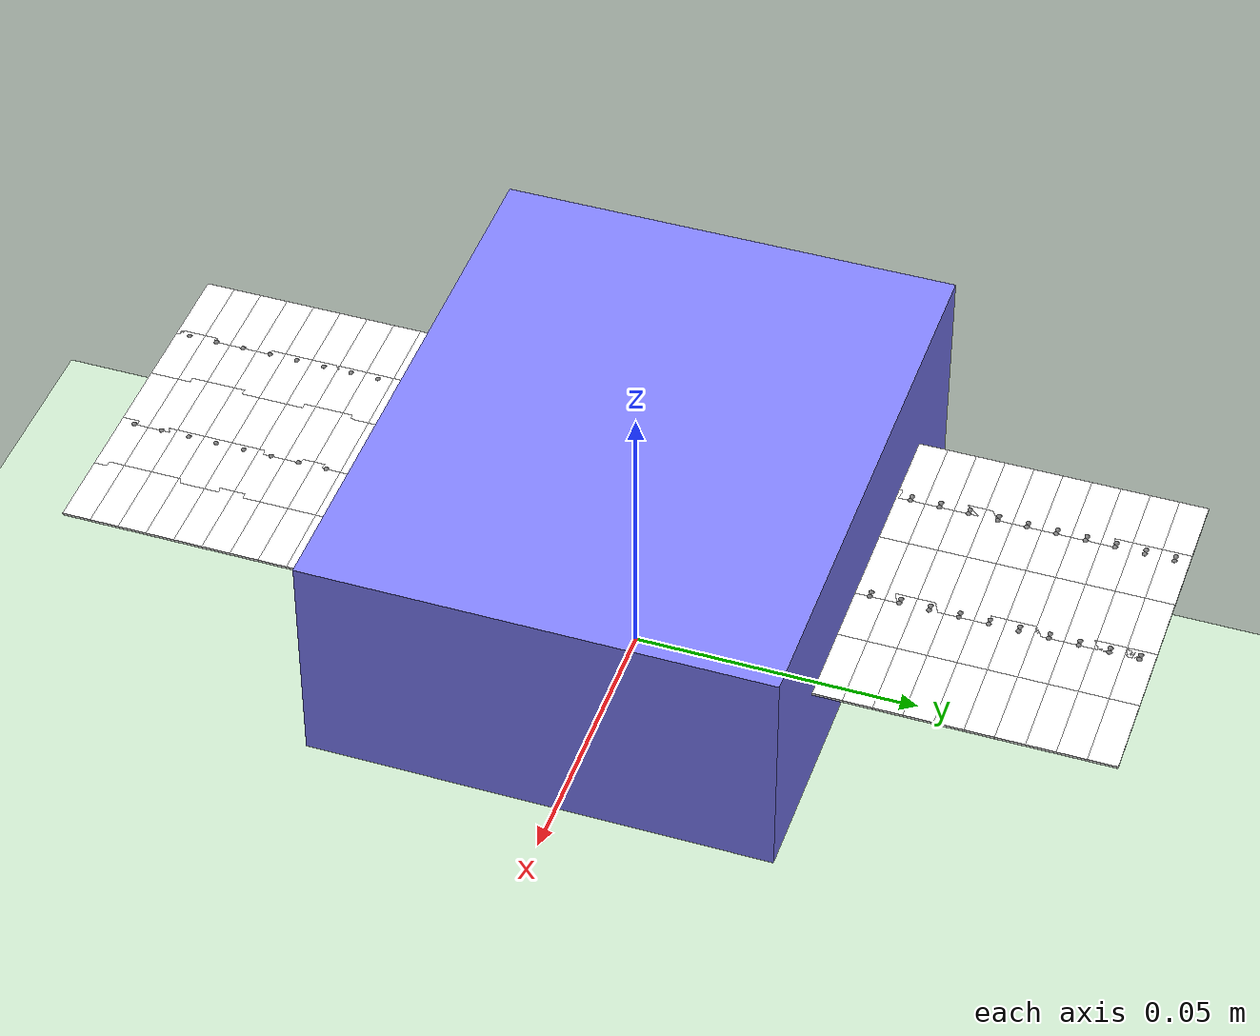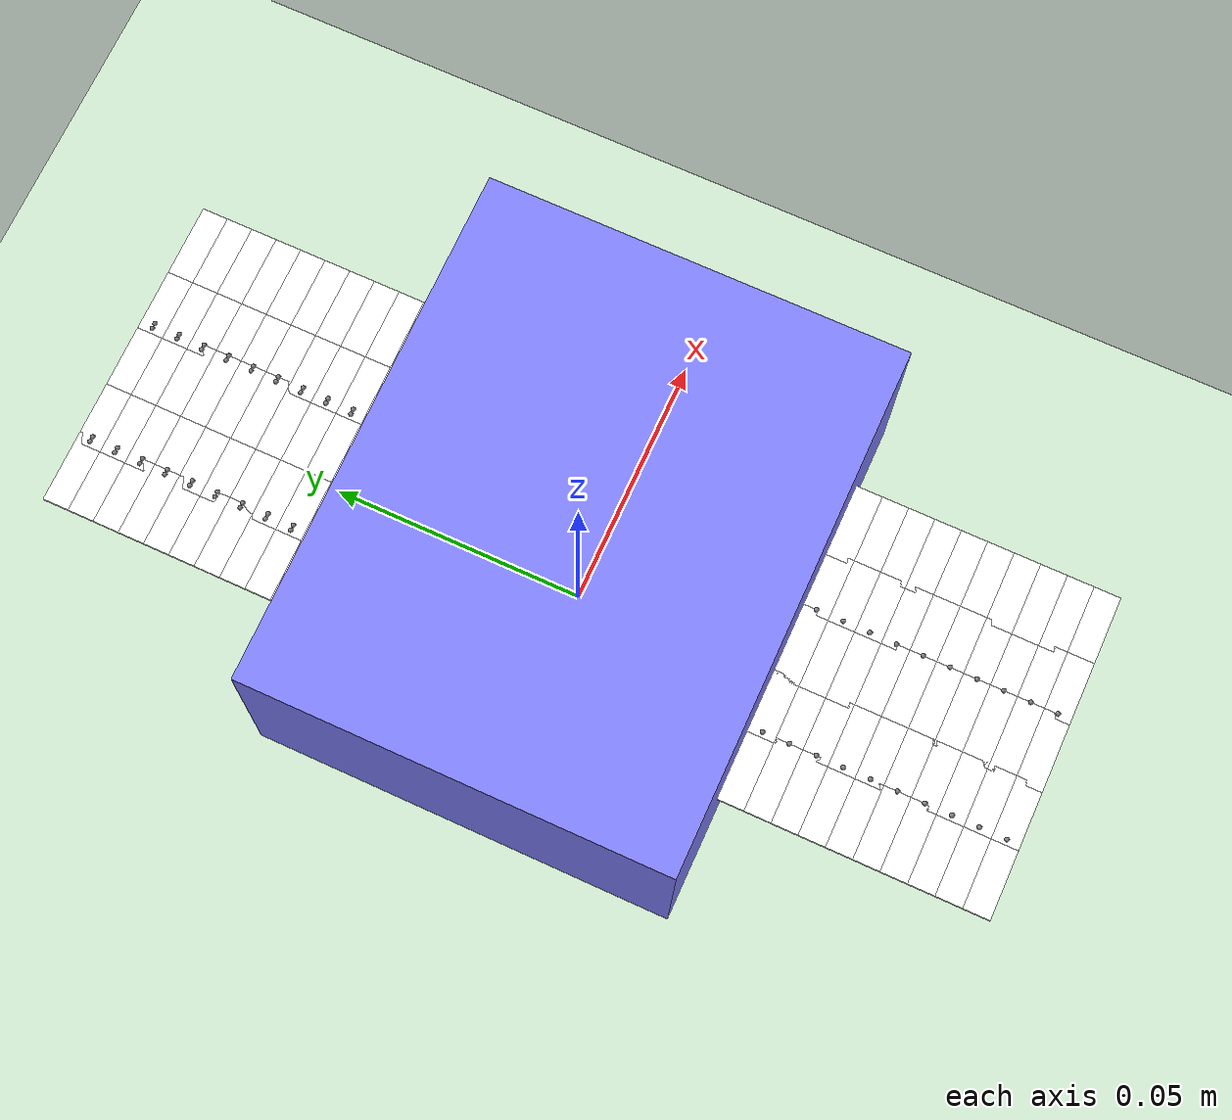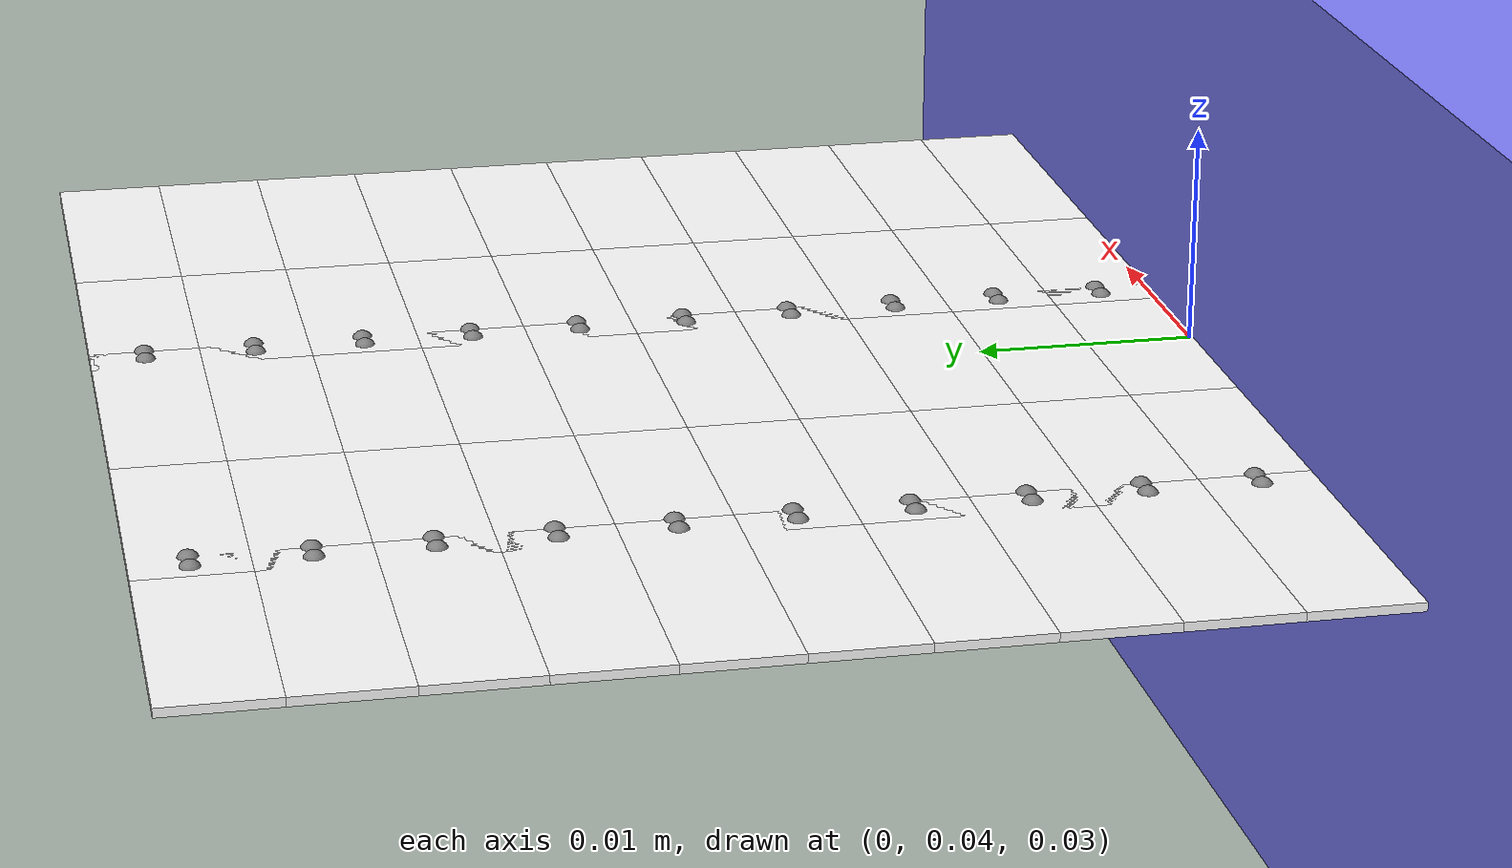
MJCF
<mujoco model="manta">
    <compiler angle="degree" coordinate="local" inertiafromgeom="true"/>
    <option collision="predefined" density="1000" integrator="RK4" timestep="0.01" viscosity="0.1"/>
    <default>
        <geom conaffinity="1" condim="1" contype="1" material="geom" rgba="0.8 0.6 .4 1"/>
        <joint armature='0.1'/>
        <default class="DEA_active">
            <geom type='box' size='.007 .0025 .0002' rgba='1 1 1 1'/>
        </default>
        <default class="DEA_passive">
            <geom type='box' size='.006 .0025 .0002' rgba='1 1 1 1'/>
        </default>
        <default class="left_joint_active">
            <joint axis="1 0 0" limited="true" pos="0 -0.0025 0" range="-1 1" type="hinge"/>
        </default>
        <default class="right_joint_active">
            <joint axis="1 0 0" limited="true" pos="0 0.0025 0" range="-1 1" type="hinge"/>
        </default>
        <default class="joint_passive">
            <joint axis="0 1 0" limited="true" pos=".006 0 0" range="-60 60" type="hinge"/>
        </default>
        <default class="endsite">
            <site pos="-0.005 0 0" size="0.0005"/>
        </default>
        <default class="headsite">
            <site pos="0.007 0 0" size="0.0005"/>
        </default>
        <default class="actuator">
            <motor ctrllimited="true" ctrlrange="-1 1" gear="150.0"/>
        </default>
    </default>
    <asset>
        <texture builtin="gradient" height="100" rgb1="1 1 1" rgb2="0 0 0" type="skybox" width="100"/>
        <texture builtin="flat" height="1278" mark="cross" markrgb="1 1 1" name="texgeom" random="0.01"
                 rgb1="0.8 0.6 0.4" rgb2="0.8 0.6 0.4" type="cube" width="127"/>
        <texture builtin="checker" height="100" name="texplane" rgb1="0 0 0" rgb2="0.8 0.8 0.8" type="2d" width="100"/>
        <material name="MatPlane" reflectance="0.5" shininess="1" specular="1" texrepeat="10 10" texture="texplane"/>
        <material name="geom" texture="texgeom" texuniform="true"/>
    </asset>
    <worldbody>
        <light cutoff="100" diffuse="1 1 1" dir="-0 0 -1.3" directional="true" exponent="1" pos="0 0 1.3"
               specular=".1 .1 .1"/>
        <geom conaffinity="1" condim="3" material="MatPlane" name="floor" pos="0 0 -0.1" rgba="0.8 0.9 0.8 1"
              size="1 1 0.1" type="plane"/>
        <!--  ======================================================================== torso ============================================================================= /-->
        <body name="torso" pos="0 0 .03">
            <camera name="track" mode="trackcom" pos="0 -3 3" xyaxes="1 0 0 0 1 1"/>
            <geom type='box' size='.05 .04 .02' rgba='.5 .5 1 1'/>
            <joint axis="1 0 0" name="slider1" pos="0 0 0" type="slide"/>
            <joint axis="0 1 0" name="slider2" pos="0 0 0" type="slide"/>
            <joint axis="0 0 1" name="rot" pos="0 0 0" type="hinge"/>
            <!--  ======================================================================== torso ============================================================================= /-->
            <!--  ======================================================================== left-1 ============================================================================= /-->
            <body name="left_active_1_1" pos=".024 .0425 0">
                <geom class="DEA_active"/>
                <joint name="left_active_1_1" class="left_joint_active"/>
                <body name="left_passive_1_1" pos="-.013 0 0">
                    <geom class="DEA_passive"/>
                    <joint name="temp" class="joint_passive"/>
                    <site name="left_end_1_1" class="endsite"/>
                </body>
                <body name="left_active_1_2" pos="0 .005 0">
                    <geom class="DEA_active"/>
                    <joint name="left_active_1_2" class="left_joint_active"/>
                    <body name="left_passive_1_2" pos="-.013 0 0">
                        <geom class="DEA_passive"/>
                        <joint class="joint_passive"/>
                        <site name="left_end_1_2" class="endsite"/>
                    </body>
                    <body name="left_active_1_3" pos="0 .005 0">
                        <geom class="DEA_active"/>
                        <joint name="left_active_1_3" class="left_joint_active"/>
                        <body name="left_passive_1_3" pos="-.013 0 0">
                            <geom class="DEA_passive"/>
                            <joint class="joint_passive"/>
                            <site name="left_end_1_3" class="endsite"/>
                        </body>
                        <body name="left_active_1_4" pos="0 .005 0">
                            <geom class="DEA_active"/>
                            <joint name="left_active_1_4" class="left_joint_active"/>
                            <body name="left_passive_1_4" pos="-.013 0 0">
                                <geom class="DEA_passive"/>
                                <joint class="joint_passive"/>
                                <site name="left_end_1_4" class="endsite"/>
                            </body>
                            <body name="left_active_1_5" pos="0 .005 0">
                                <geom class="DEA_active"/>
                                <joint name="left_active_1_5" class="left_joint_active"/>
                                <body name="left_passive_1_5" pos="-.013 0 0">
                                    <geom class="DEA_passive"/>
                                    <joint class="joint_passive"/>
                                    <site name="left_end_1_5" class="endsite"/>
                                </body>
                                <body name="left_active_1_6" pos="0 .005 0">
                                    <geom class="DEA_active"/>
                                    <joint name="left_active_1_6" class="left_joint_active"/>
                                    <body name="left_passive_1_6" pos="-.013 0 0">
                                        <geom class="DEA_passive"/>
                                        <joint class="joint_passive"/>
                                        <site name="left_end_1_6" class="endsite"/>
                                    </body>
                                    <body name="left_active_1_7" pos="0 .005 0">
                                        <geom class="DEA_active"/>
                                        <joint name="left_active_1_7" class="left_joint_active"/>
                                        <body name="left_passive_1_7" pos="-.013 0 0">
                                            <geom class="DEA_passive"/>
                                            <joint class="joint_passive"/>
                                            <site name="left_end_1_7" class="endsite"/>
                                        </body>
                                        <body name="left_active_1_8" pos="0 .005 0">
                                            <geom class="DEA_active"/>
                                            <joint name="left_active_1_8" class="left_joint_active"/>
                                            <body name="left_passive_1_8" pos="-.013 0 0">
                                                <geom class="DEA_passive"/>
                                                <joint class="joint_passive"/>
                                                <site name="left_end_1_8" class="endsite"/>
                                            </body>
                                            <body name="left_active_1_9" pos="0 .005 0">
                                                <geom class="DEA_active"/>
                                                <joint name="left_active_1_9" class="left_joint_active"/>
                                                <body name="left_passive_1_9" pos="-.013 0 0">
                                                    <geom class="DEA_passive"/>
                                                    <joint class="joint_passive"/>
                                                    <site name="left_end_1_9" class="endsite"/>
                                                </body>
                                                <body name="left_active_1_10" pos="0 .005 0">
                                                    <geom class="DEA_active"/>
                                                    <joint name="left_active_1_10" class="left_joint_active"/>
                                                    <body name="left_passive_1_10" pos="-.013 0 0">
                                                        <geom class="DEA_passive"/>
                                                        <joint class="joint_passive"/>
                                                        <site name="left_end_1_10" class="endsite"/>
                                                    </body>
                                                </body>
                                            </body>
                                        </body>
                                    </body>
                                </body>
                            </body>
                        </body>
                    </body>
                </body>
            </body>
            <!--  ======================================================================== left-1 ============================================================================= /-->
            <!--  ======================================================================== left-2 ============================================================================= /-->
            <body name="left_active_2_1" pos="0 .0425 0">
                <geom class="DEA_active"/>
                <joint name="left_active_2_1" class="left_joint_active"/>
                <site name="left_head_2_1" class="headsite"/>
                <body name="left_passive_2_1" pos="-.013 0 0">
                    <geom class="DEA_passive"/>
                    <joint class="joint_passive"/>
                    <site name="left_end_2_1" class="endsite"/>
                </body>
                <body name="left_active_2_2" pos="0 .005 0">
                    <geom class="DEA_active"/>
                    <joint name="left_active_2_2" class="left_joint_active"/>
                    <site name="left_head_2_2" class="headsite"/>
                    <body name="left_passive_2_2" pos="-.013 0 0">
                        <geom class="DEA_passive"/>
                        <joint class="joint_passive"/>
                        <site name="left_end_2_2" class="endsite"/>
                    </body>
                    <body name="left_active_2_3" pos="0 .005 0">
                        <geom class="DEA_active"/>
                        <joint name="left_active_2_3" class="left_joint_active"/>
                        <site name="left_head_2_3" class="headsite"/>
                        <body name="left_passive_2_3" pos="-.013 0 0">
                            <geom class="DEA_passive"/>
                            <joint class="joint_passive"/>
                            <site name="left_end_2_3" class="endsite"/>
                        </body>
                        <body name="left_active_2_4" pos="0 .005 0">
                            <geom class="DEA_active"/>
                            <joint name="left_active_2_4" class="left_joint_active"/>
                            <site name="left_head_2_4" class="headsite"/>
                            <body name="left_passive_2_4" pos="-.013 0 0">
                                <geom class="DEA_passive"/>
                                <joint class="joint_passive"/>
                                <site name="left_end_2_4" class="endsite"/>
                            </body>
                            <body name="left_active_2_5" pos="0 .005 0">
                                <geom class="DEA_active"/>
                                <joint name="left_active_2_5" class="left_joint_active"/>
                                <site name="left_head_2_5" class="headsite"/>
                                <body name="left_passive_2_5" pos="-.013 0 0">
                                    <geom class="DEA_passive"/>
                                    <joint class="joint_passive"/>
                                    <site name="left_end_2_5" class="endsite"/>
                                </body>
                                <body name="left_active_2_6" pos="0 .005 0">
                                    <geom class="DEA_active"/>
                                    <joint name="left_active_2_6" class="left_joint_active"/>
                                    <site name="left_head_2_6" class="headsite"/>
                                    <body name="left_passive_2_6" pos="-.013 0 0">
                                        <geom class="DEA_passive"/>
                                        <joint class="joint_passive"/>
                                        <site name="left_end_2_6" class="endsite"/>
                                    </body>
                                    <body name="left_active_2_7" pos="0 .005 0">
                                        <geom class="DEA_active"/>
                                        <joint name="left_active_2_7" class="left_joint_active"/>
                                        <site name="left_head_2_7" class="headsite"/>
                                        <body name="left_passive_2_7" pos="-.013 0 0">
                                            <geom class="DEA_passive"/>
                                            <joint class="joint_passive"/>
                                            <site name="left_end_2_7" class="endsite"/>
                                        </body>
                                        <body name="left_active_2_8" pos="0 .005 0">
                                            <geom class="DEA_active"/>
                                            <joint name="left_active_2_8" class="left_joint_active"/>
                                            <site name="left_head_2_8" class="headsite"/>
                                            <body name="left_passive_2_8" pos="-.013 0 0">
                                                <geom class="DEA_passive"/>
                                                <joint class="joint_passive"/>
                                                <site name="left_end_2_8" class="endsite"/>
                                            </body>
                                            <body name="left_active_2_9" pos="0 .005 0">
                                                <geom class="DEA_active"/>
                                                <joint name="left_active_2_9" class="left_joint_active"/>
                                                <site name="left_head_2_9" class="headsite"/>
                                                <body name="left_passive_2_9" pos="-.013 0 0">
                                                    <geom class="DEA_passive"/>
                                                    <joint class="joint_passive"/>
                                                    <site name="left_end_2_9" class="endsite"/>
                                                </body>
                                                <body name="left_active_2_10" pos="0 .005 0">
                                                    <geom class="DEA_active"/>
                                                    <joint name="left_active_2_10" class="left_joint_active"/>
                                                    <site name="left_head_2_10" class="headsite"/>
                                                    <body name="left_passive_2_10" pos="-.013 0 0">
                                                        <geom class="DEA_passive"/>
                                                        <joint class="joint_passive"/>
                                                        <site name="left_end_2_10" class="endsite"/>
                                                    </body>
                                                </body>
                                            </body>
                                        </body>
                                    </body>
                                </body>
                            </body>
                        </body>
                    </body>
                </body>
            </body>
            <!--  ======================================================================== left-2 ============================================================================= /-->
            <!--  ======================================================================== left-3 ============================================================================= /-->
            <body name="left_active_3_1" pos="-.024 .0425 0">
                <geom class="DEA_active"/>
                <joint name="left_active_3_1" class="left_joint_active"/>
                <site name="left_head_3_1" class="headsite"/>
                <body name="left_active_3_2" pos="0 .005 0">
                    <geom class="DEA_active"/>
                    <joint name="left_active_3_2" class="left_joint_active"/>
                    <site name="left_head_3_2" class="headsite"/>
                    <body name="left_active_3_3" pos="0 .005 0">
                        <geom class="DEA_active"/>
                        <joint name="left_active_3_3" class="left_joint_active"/>
                        <site name="left_head_3_3" class="headsite"/>
                        <body name="left_active_3_4" pos="0 .005 0">
                            <geom class="DEA_active"/>
                            <joint name="left_active_3_4" class="left_joint_active"/>
                            <site name="left_head_3_4" class="headsite"/>
                            <body name="left_active_3_5" pos="0 .005 0">
                                <geom class="DEA_active"/>
                                <joint name="left_active_3_5" class="left_joint_active"/>
                                <site name="left_head_3_5" class="headsite"/>
                                <body name="left_active_3_6" pos="0 .005 0">
                                    <geom class="DEA_active"/>
                                    <joint name="left_active_3_6" class="left_joint_active"/>
                                    <site name="left_head_3_6" class="headsite"/>
                                    <body name="left_active_3_7" pos="0 .005 0">
                                        <geom class="DEA_active"/>
                                        <joint name="left_active_3_7" class="left_joint_active"/>
                                        <site name="left_head_3_7" class="headsite"/>
                                        <body name="left_active_3_8" pos="0 .005 0">
                                            <geom class="DEA_active"/>
                                            <joint name="left_active_3_8" class="left_joint_active"/>
                                            <site name="left_head_3_8" class="headsite"/>
                                            <body name="left_active_3_9" pos="0 .005 0">
                                                <geom class="DEA_active"/>
                                                <joint name="left_active_3_9" class="left_joint_active"/>
                                                <site name="left_head_3_9" class="headsite"/>
                                                <body name="left_active_3_10" pos="0 .005 0">
                                                    <geom class="DEA_active"/>
                                                    <joint name="left_active_3_10" class="left_joint_active"/>
                                                    <site name="left_head_3_10" class="headsite"/>
                                                </body>
                                            </body>
                                        </body>
                                    </body>
                                </body>
                            </body>
                        </body>
                    </body>
                </body>
            </body>

            <!--  ======================================================================== left-3 ============================================================================= /-->
            <!--  ======================================================================== right-1 ============================================================================= /-->
            <body name="right_active_1_1" pos=".024 -.0425 0">
                <geom class="DEA_active"/>
                <joint name="right_active_1_1" class="right_joint_active"/>
                <body name="right_passive_1_1" pos="-.012 0 0">
                    <geom class="DEA_passive"/>
                    <joint class="joint_passive"/>
                    <site name="right_end_1_1" class="endsite"/>
                </body>
                <body name="right_active_1_2" pos="0 -.005 0">
                    <geom class="DEA_active"/>
                    <joint name="right_active_1_2" class="right_joint_active"/>
                    <body name="right_passive_1_2" pos="-.012 0 0">
                        <geom class="DEA_passive"/>
                        <joint class="joint_passive"/>
                        <site name="right_end_1_2" class="endsite"/>
                    </body>
                    <body name="right_active_1_3" pos="0 -.005 0">
                        <geom class="DEA_active"/>
                        <joint name="right_active_1_3" class="right_joint_active"/>
                        <body name="right_passive_1_3" pos="-.012 0 0">
                            <geom class="DEA_passive"/>
                            <joint class="joint_passive"/>
                            <site name="right_end_1_3" class="endsite"/>
                        </body>
                        <body name="right_active_1_4" pos="0 -.005 0">
                            <geom class="DEA_active"/>
                            <joint name="right_active_1_4" class="right_joint_active"/>
                            <body name="right_passive_1_4" pos="-.012 0 0">
                                <geom class="DEA_passive"/>
                                <joint class="joint_passive"/>
                                <site name="right_end_1_4" class="endsite"/>
                            </body>
                            <body name="right_active_1_5" pos="0 -.005 0">
                                <geom class="DEA_active"/>
                                <joint name="right_active_1_5" class="right_joint_active"/>
                                <body name="right_passive_1_5" pos="-.012 0 0">
                                    <geom class="DEA_passive"/>
                                    <joint class="joint_passive"/>
                                    <site name="right_end_1_5" class="endsite"/>
                                </body>
                                <body name="right_active_1_6" pos="0 -.005 0">
                                    <geom class="DEA_active"/>
                                    <joint name="right_active_1_6" class="right_joint_active"/>
                                    <body name="right_passive_1_6" pos="-.012 0 0">
                                        <geom class="DEA_passive"/>
                                        <joint class="joint_passive"/>
                                        <site name="right_end_1_6" class="endsite"/>
                                    </body>
                                    <body name="right_active_1_7" pos="0 -.005 0">
                                        <geom class="DEA_active"/>
                                        <joint name="right_active_1_7" class="right_joint_active"/>
                                        <body name="right_passive_1_7" pos="-.012 0 0">
                                            <geom class="DEA_passive"/>
                                            <joint class="joint_passive"/>
                                            <site name="right_end_1_7" class="endsite"/>
                                        </body>
                                        <body name="right_active_1_8" pos="0 -.005 0">
                                            <geom class="DEA_active"/>
                                            <joint name="right_active_1_8" class="right_joint_active"/>
                                            <body name="right_passive_1_8" pos="-.012 0 0">
                                                <geom class="DEA_passive"/>
                                                <joint class="joint_passive"/>
                                                <site name="right_end_1_8" class="endsite"/>
                                            </body>
                                            <body name="right_active_1_9" pos="0 -.005 0">
                                                <geom class="DEA_active"/>
                                                <joint name="right_active_1_9" class="right_joint_active"/>
                                                <body name="right_passive_1_9" pos="-.012 0 0">
                                                    <geom class="DEA_passive"/>
                                                    <joint class="joint_passive"/>
                                                    <site name="right_end_1_9" class="endsite"/>
                                                </body>
                                                <body name="right_active_1_10" pos="0 -.005 0">
                                                    <geom class="DEA_active"/>
                                                    <joint name="right_active_1_10" class="right_joint_active"/>
                                                    <body name="right_passive_1_10" pos="-.012 0 0">
                                                        <geom class="DEA_passive"/>
                                                        <joint class="joint_passive"/>
                                                        <site name="right_end_1_10" class="endsite"/>
                                                    </body>
                                                </body>
                                            </body>
                                        </body>
                                    </body>
                                </body>
                            </body>
                        </body>
                    </body>
                </body>
            </body>
            <!--  ======================================================================== right-1 ============================================================================= /-->
            <!--  ======================================================================== right-2 ============================================================================= /-->
            <body name="right_active_2_1" pos="0 -.0425 0">
                <geom class="DEA_active"/>
                <joint name="right_active_2_1" class="right_joint_active"/>
                <site name="right_head_2_1" class="headsite"/>
                <body name="right_passive_2_1" pos="-.012 0 0">
                    <geom class="DEA_passive"/>
                    <joint class="joint_passive"/>
                    <site name="right_end_2_1" class="endsite"/>
                </body>
                <body name="right_active_2_2" pos="0 -.005 0">
                    <geom class="DEA_active"/>
                    <joint name="right_active_2_2" class="right_joint_active"/>
                    <site name="right_head_2_2" class="headsite"/>
                    <body name="right_passive_2_2" pos="-.012 0 0">
                        <geom class="DEA_passive"/>
                        <joint class="joint_passive"/>
                        <site name="right_end_2_2" class="endsite"/>
                    </body>
                    <body name="right_active_2_3" pos="0 -.005 0">
                        <geom class="DEA_active"/>
                        <joint name="right_active_2_3" class="right_joint_active"/>
                        <site name="right_head_2_3" class="headsite"/>
                        <body name="right_passive_2_3" pos="-.012 0 0">
                            <geom class="DEA_passive"/>
                            <joint class="joint_passive"/>
                            <site name="right_end_2_3" class="endsite"/>
                        </body>
                        <body name="right_active_2_4" pos="0 -.005 0">
                            <geom class="DEA_active"/>
                            <joint name="right_active_2_4" class="right_joint_active"/>
                            <site name="right_head_2_4" class="headsite"/>
                            <body name="right_passive_2_4" pos="-.012 0 0">
                                <geom class="DEA_passive"/>
                                <joint class="joint_passive"/>
                                <site name="right_end_2_4" class="endsite"/>
                            </body>
                            <body name="right_active_2_5" pos="0 -.005 0">
                                <geom class="DEA_active"/>
                                <joint name="right_active_2_5" class="right_joint_active"/>
                                <site name="right_head_2_5" class="headsite"/>
                                <body name="right_passive_2_5" pos="-.012 0 0">
                                    <geom class="DEA_passive"/>
                                    <joint class="joint_passive"/>
                                    <site name="right_end_2_5" class="endsite"/>
                                </body>
                                <body name="right_active_2_6" pos="0 -.005 0">
                                    <geom class="DEA_active"/>
                                    <joint name="right_active_2_6" class="right_joint_active"/>
                                    <site name="right_head_2_6" class="headsite"/>
                                    <body name="right_passive_2_6" pos="-.012 0 0">
                                        <geom class="DEA_passive"/>
                                        <joint class="joint_passive"/>
                                        <site name="right_end_2_6" class="endsite"/>
                                    </body>
                                    <body name="right_active_2_7" pos="0 -.005 0">
                                        <geom class="DEA_active"/>
                                        <joint name="right_active_2_7" class="right_joint_active"/>
                                        <site name="right_head_2_7" class="headsite"/>
                                        <body name="right_passive_2_7" pos="-.012 0 0">
                                            <geom class="DEA_passive"/>
                                            <joint class="joint_passive"/>
                                            <site name="right_end_2_7" class="endsite"/>
                                        </body>
                                        <body name="right_active_2_8" pos="0 -.005 0">
                                            <geom class="DEA_active"/>
                                            <joint name="right_active_2_8" class="right_joint_active"/>
                                            <site name="right_head_2_8" class="headsite"/>
                                            <body name="right_passive_2_8" pos="-.012 0 0">
                                                <geom class="DEA_passive"/>
                                                <joint class="joint_passive"/>
                                                <site name="right_end_2_8" class="endsite"/>
                                            </body>
                                            <body name="right_active_2_9" pos="0 -.005 0">
                                                <geom class="DEA_active"/>
                                                <joint name="right_active_2_9" class="right_joint_active"/>
                                                <site name="right_head_2_9" class="headsite"/>
                                                <body name="right_passive_2_9" pos="-.012 0 0">
                                                    <geom class="DEA_passive"/>
                                                    <joint class="joint_passive"/>
                                                    <site name="right_end_2_9" class="endsite"/>
                                                </body>
                                                <body name="right_active_2_10" pos="0 -.005 0">
                                                    <geom class="DEA_active"/>
                                                    <joint name="right_active_2_10" class="right_joint_active"/>
                                                    <site name="right_head_2_10" class="headsite"/>
                                                    <body name="right_passive_2_10" pos="-.012 0 0">
                                                        <geom class="DEA_passive"/>
                                                        <joint class="joint_passive"/>
                                                        <site name="right_end_2_10" class="endsite"/>
                                                    </body>
                                                </body>
                                            </body>
                                        </body>
                                    </body>
                                </body>
                            </body>
                        </body>
                    </body>
                </body>
            </body>
            <!--  ======================================================================== right-2 ============================================================================= /-->
            <!--  ======================================================================== right-3 ============================================================================= /-->
            <body name="right_active_3_1" pos="-.024 -.0425 0">
                <geom class="DEA_active"/>
                <joint name="right_active_3_1" class="right_joint_active"/>
                <site name="right_head_3_1" class="headsite"/>
                <body name="right_active_3_2" pos="0 -.005 0">
                    <geom class="DEA_active"/>
                    <joint name="right_active_3_2" class="right_joint_active"/>
                    <site name="right_head_3_2" class="headsite"/>
                    <body name="right_active_3_3" pos="0 -.005 0">
                        <geom class="DEA_active"/>
                        <joint name="right_active_3_3" class="right_joint_active"/>
                        <site name="right_head_3_3" class="headsite"/>
                        <body name="right_active_3_4" pos="0 -.005 0">
                            <geom class="DEA_active"/>
                            <joint name="right_active_3_4" class="right_joint_active"/>
                            <site name="right_head_3_4" class="headsite"/>
                            <body name="right_active_3_5" pos="0 -.005 0">
                                <geom class="DEA_active"/>
                                <joint name="right_active_3_5" class="right_joint_active"/>
                                <site name="right_head_3_5" class="headsite"/>
                                <body name="right_active_3_6" pos="0 -.005 0">
                                    <geom class="DEA_active"/>
                                    <joint name="right_active_3_6" class="right_joint_active"/>
                                    <site name="right_head_3_6" class="headsite"/>
                                    <body name="right_active_3_7" pos="0 -.005 0">
                                        <geom class="DEA_active"/>
                                        <joint name="right_active_3_7" class="right_joint_active"/>
                                        <site name="right_head_3_7" class="headsite"/>
                                        <body name="right_active_3_8" pos="0 -.005 0">
                                            <geom class="DEA_active"/>
                                            <joint name="right_active_3_8" class="right_joint_active"/>
                                            <site name="right_head_3_8" class="headsite"/>
                                            <body name="right_active_3_9" pos="0 -.005 0">
                                                <geom class="DEA_active"/>
                                                <joint name="right_active_3_9" class="right_joint_active"/>
                                                <site name="right_head_3_9" class="headsite"/>
                                                <body name="right_active_3_10" pos="0 -.005 0">
                                                    <geom class="DEA_active"/>
                                                    <joint name="right_active_3_10" class="right_joint_active"/>
                                                    <site name="right_head_3_10" class="headsite"/>
                                                </body>
                                            </body>
                                        </body>
                                    </body>
                                </body>
                            </body>
                        </body>
                    </body>
                </body>
            </body>
            <!--  ======================================================================== right-3 ============================================================================= /-->
        </body>
    </worldbody>
    <!--    add tendon from one site to another site-->
    <tendon>
        <!-- ================================================= left 1 - 2 ====================================================-->
        <spatial width="0.0001" stiffness="500">
            <site site="left_end_1_1"/>
            <site site="left_head_2_1"/>
        </spatial>
        <spatial width="0.0001" stiffness="500">
            <site site="left_end_1_2"/>
            <site site="left_head_2_2"/>
        </spatial>
        <spatial width="0.0001" stiffness="500">
            <site site="left_end_1_3"/>
            <site site="left_head_2_3"/>
        </spatial>
        <spatial width="0.0001" stiffness="500">
            <site site="left_end_1_4"/>
            <site site="left_head_2_4"/>
        </spatial>
        <spatial width="0.0001" stiffness="500">
            <site site="left_end_1_5"/>
            <site site="left_head_2_5"/>
        </spatial>
        <spatial width="0.0001" stiffness="500">
            <site site="left_end_1_6"/>
            <site site="left_head_2_6"/>
        </spatial>
        <spatial width="0.0001" stiffness="500">
            <site site="left_end_1_7"/>
            <site site="left_head_2_7"/>
        </spatial>
        <spatial width="0.0001" stiffness="500">
            <site site="left_end_1_8"/>
            <site site="left_head_2_8"/>
        </spatial>
        <spatial width="0.0001" stiffness="500">
            <site site="left_end_1_9"/>
            <site site="left_head_2_9"/>
        </spatial>
        <spatial width="0.0001" stiffness="500">
            <site site="left_end_1_10"/>
            <site site="left_head_2_10"/>
        </spatial>
        <!-- ================================================= left 1 - 2 ====================================================-->
        <!-- ================================================= left 2 - 3 ====================================================-->
        <spatial width="0.0001" stiffness="100">
            <site site="left_end_2_1"/>
            <site site="left_head_3_1"/>
        </spatial>
        <spatial width="0.0001" stiffness="100">
            <site site="left_end_2_2"/>
            <site site="left_head_3_2"/>
        </spatial>
        <spatial width="0.0001" stiffness="100">
            <site site="left_end_2_3"/>
            <site site="left_head_3_3"/>
        </spatial>
        <spatial width="0.0001" stiffness="100">
            <site site="left_end_2_4"/>
            <site site="left_head_3_4"/>
        </spatial>
        <spatial width="0.0001" stiffness="100">
            <site site="left_end_2_5"/>
            <site site="left_head_3_5"/>
        </spatial>
        <spatial width="0.0001" stiffness="100">
            <site site="left_end_2_6"/>
            <site site="left_head_3_6"/>
        </spatial>
        <spatial width="0.0001" stiffness="100">
            <site site="left_end_2_7"/>
            <site site="left_head_3_7"/>
        </spatial>
        <spatial width="0.0001" stiffness="100">
            <site site="left_end_2_8"/>
            <site site="left_head_3_8"/>
        </spatial>
        <spatial width="0.0001" stiffness="100">
            <site site="left_end_2_9"/>
            <site site="left_head_3_9"/>
        </spatial>
        <spatial width="0.0001" stiffness="100">
            <site site="left_end_2_10"/>
            <site site="left_head_3_10"/>
        </spatial>
        <!-- ================================================= left 2 - 3 ====================================================-->

        <!-- ================================================= right 1 - 2 ====================================================-->
        <spatial width="0.0001" stiffness="100">
            <site site="right_end_1_1"/>
            <site site="right_head_2_1"/>
        </spatial>
        <spatial width="0.0001" stiffness="100">
            <site site="right_end_1_2"/>
            <site site="right_head_2_2"/>
        </spatial>
        <spatial width="0.0001" stiffness="100">
            <site site="right_end_1_3"/>
            <site site="right_head_2_3"/>
        </spatial>
        <spatial width="0.0001" stiffness="100">
            <site site="right_end_1_4"/>
            <site site="right_head_2_4"/>
        </spatial>
        <spatial width="0.0001" stiffness="100">
            <site site="right_end_1_5"/>
            <site site="right_head_2_5"/>
        </spatial>
        <spatial width="0.0001" stiffness="100">
            <site site="right_end_1_6"/>
            <site site="right_head_2_6"/>
        </spatial>
        <spatial width="0.0001" stiffness="100">
            <site site="right_end_1_7"/>
            <site site="right_head_2_7"/>
        </spatial>
        <spatial width="0.0001" stiffness="100">
            <site site="right_end_1_8"/>
            <site site="right_head_2_8"/>
        </spatial>
        <spatial width="0.0001" stiffness="100">
            <site site="right_end_1_9"/>
            <site site="right_head_2_9"/>
        </spatial>
        <spatial width="0.0001" stiffness="100">
            <site site="right_end_1_10"/>
            <site site="right_head_2_10"/>
        </spatial>
        <!-- ================================================= right 1 - 2 ====================================================-->
        <!-- ================================================= right 2 - 3 ====================================================-->
        <spatial width="0.0001" stiffness="100">
            <site site="right_end_2_1"/>
            <site site="right_head_3_1"/>
        </spatial>
        <spatial width="0.0001" stiffness="100">
            <site site="right_end_2_2"/>
            <site site="right_head_3_2"/>
        </spatial>
        <spatial width="0.0001" stiffness="100">
            <site site="right_end_2_3"/>
            <site site="right_head_3_3"/>
        </spatial>
        <spatial width="0.0001" stiffness="100">
            <site site="right_end_2_4"/>
            <site site="right_head_3_4"/>
        </spatial>
        <spatial width="0.0001" stiffness="100">
            <site site="right_end_2_5"/>
            <site site="right_head_3_5"/>
        </spatial>
        <spatial width="0.0001" stiffness="100">
            <site site="right_end_2_6"/>
            <site site="right_head_3_6"/>
        </spatial>
        <spatial width="0.0001" stiffness="100">
            <site site="right_end_2_7"/>
            <site site="right_head_3_7"/>
        </spatial>
        <spatial width="0.0001" stiffness="100">
            <site site="right_end_2_8"/>
            <site site="right_head_3_8"/>
        </spatial>
        <spatial width="0.0001" stiffness="100">
            <site site="right_end_2_9"/>
            <site site="right_head_3_9"/>
        </spatial>
        <spatial width="0.0001" stiffness="100">
            <site site="right_end_2_10"/>
            <site site="right_head_3_10"/>
        </spatial>
        <!-- ================================================= right 2 - 3 ====================================================-->

    </tendon>

    <actuator>
        <motor class="actuator" joint="left_active_1_1"/>
        <motor class="actuator" joint="left_active_1_2"/>
        <motor class="actuator" joint="left_active_1_3"/>
        <motor class="actuator" joint="left_active_1_4"/>
        <motor class="actuator" joint="left_active_1_5"/>
        <motor class="actuator" joint="left_active_1_6"/>
        <motor class="actuator" joint="left_active_1_7"/>
        <motor class="actuator" joint="left_active_1_8"/>
        <motor class="actuator" joint="left_active_1_9"/>
        <motor class="actuator" joint="left_active_1_10"/>

        <motor class="actuator" joint="left_active_2_1"/>
        <motor class="actuator" joint="left_active_2_2"/>
        <motor class="actuator" joint="left_active_2_3"/>
        <motor class="actuator" joint="left_active_2_4"/>
        <motor class="actuator" joint="left_active_2_5"/>
        <motor class="actuator" joint="left_active_2_6"/>
        <motor class="actuator" joint="left_active_2_7"/>
        <motor class="actuator" joint="left_active_2_8"/>
        <motor class="actuator" joint="left_active_2_9"/>
        <motor class="actuator" joint="left_active_2_10"/>

        <motor class="actuator" joint="left_active_3_1"/>
        <motor class="actuator" joint="left_active_3_2"/>
        <motor class="actuator" joint="left_active_3_3"/>
        <motor class="actuator" joint="left_active_3_4"/>
        <motor class="actuator" joint="left_active_3_5"/>
        <motor class="actuator" joint="left_active_3_6"/>
        <motor class="actuator" joint="left_active_3_7"/>
        <motor class="actuator" joint="left_active_3_8"/>
        <motor class="actuator" joint="left_active_3_9"/>
        <motor class="actuator" joint="left_active_3_10"/>

        <motor class="actuator" joint="right_active_1_1"/>
        <motor class="actuator" joint="right_active_1_2"/>
        <motor class="actuator" joint="right_active_1_3"/>
        <motor class="actuator" joint="right_active_1_4"/>
        <motor class="actuator" joint="right_active_1_5"/>
        <motor class="actuator" joint="right_active_1_6"/>
        <motor class="actuator" joint="right_active_1_7"/>
        <motor class="actuator" joint="right_active_1_8"/>
        <motor class="actuator" joint="right_active_1_9"/>
        <motor class="actuator" joint="right_active_1_10"/>

        <motor class="actuator" joint="right_active_2_1"/>
        <motor class="actuator" joint="right_active_2_2"/>
        <motor class="actuator" joint="right_active_2_3"/>
        <motor class="actuator" joint="right_active_2_4"/>
        <motor class="actuator" joint="right_active_2_5"/>
        <motor class="actuator" joint="right_active_2_6"/>
        <motor class="actuator" joint="right_active_2_7"/>
        <motor class="actuator" joint="right_active_2_8"/>
        <motor class="actuator" joint="right_active_2_9"/>
        <motor class="actuator" joint="right_active_2_10"/>

        <motor class="actuator" joint="right_active_3_1"/>
        <motor class="actuator" joint="right_active_3_2"/>
        <motor class="actuator" joint="right_active_3_3"/>
        <motor class="actuator" joint="right_active_3_4"/>
        <motor class="actuator" joint="right_active_3_5"/>
        <motor class="actuator" joint="right_active_3_6"/>
        <motor class="actuator" joint="right_active_3_7"/>
        <motor class="actuator" joint="right_active_3_8"/>
        <motor class="actuator" joint="right_active_3_9"/>
        <motor class="actuator" joint="right_active_3_10"/>
    </actuator>
</mujoco>
